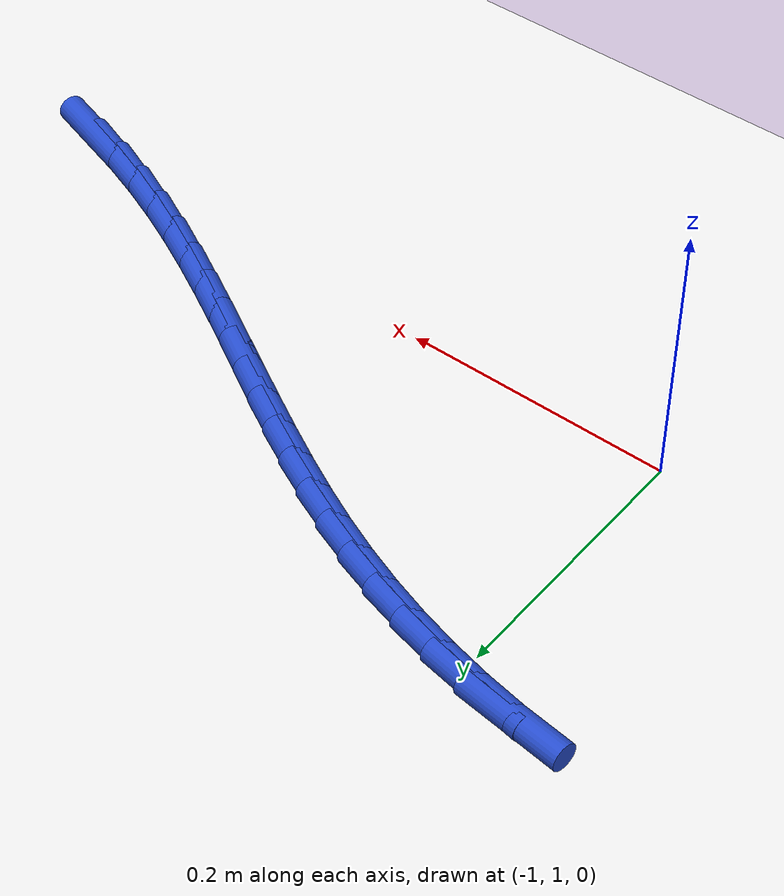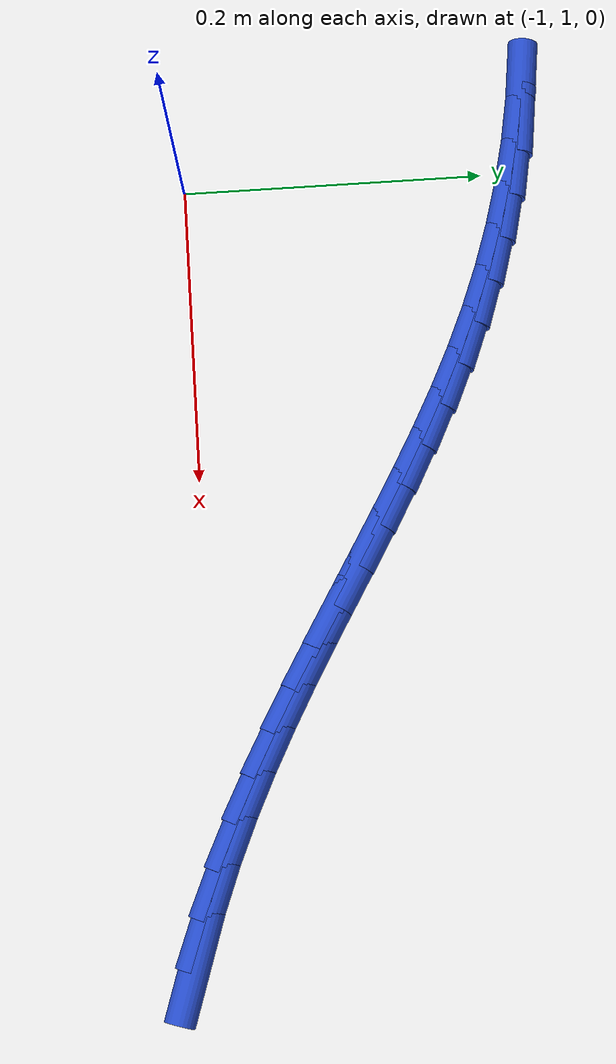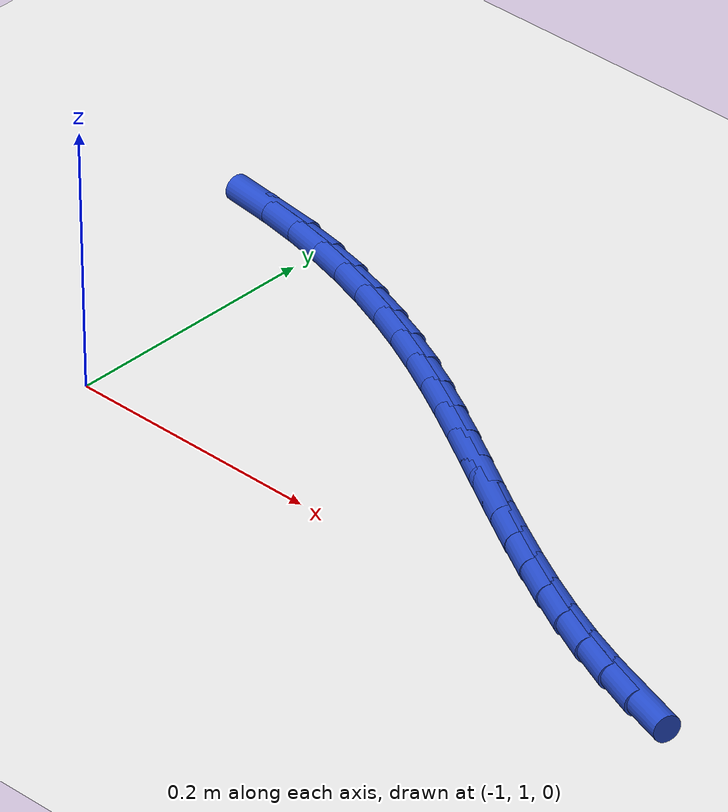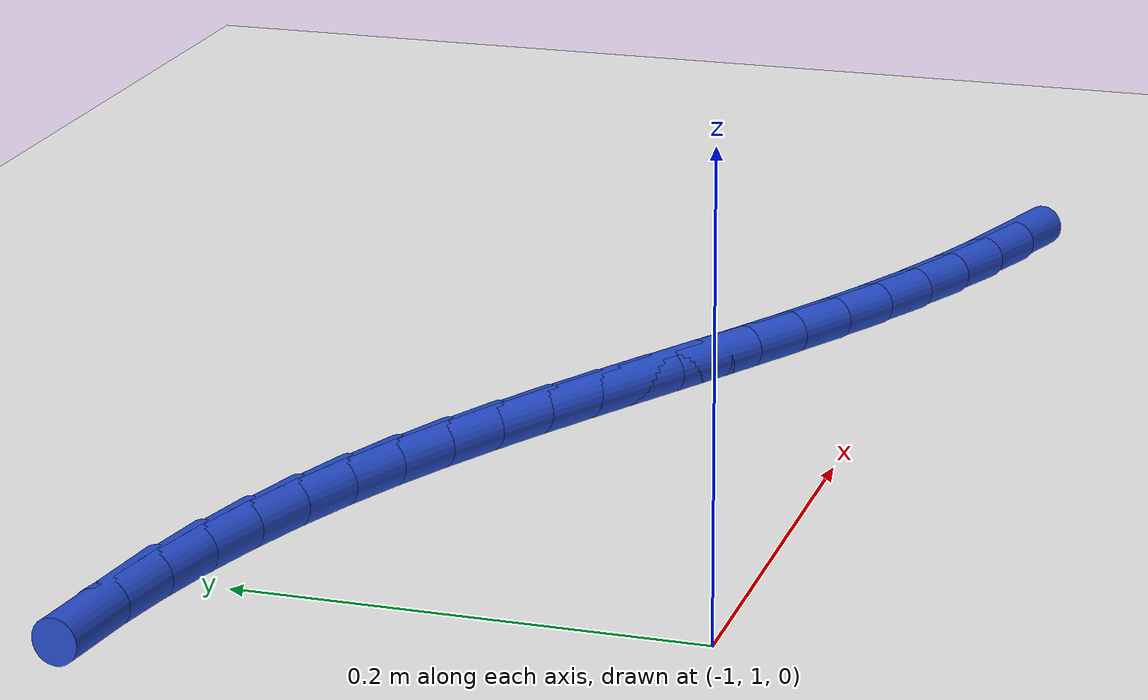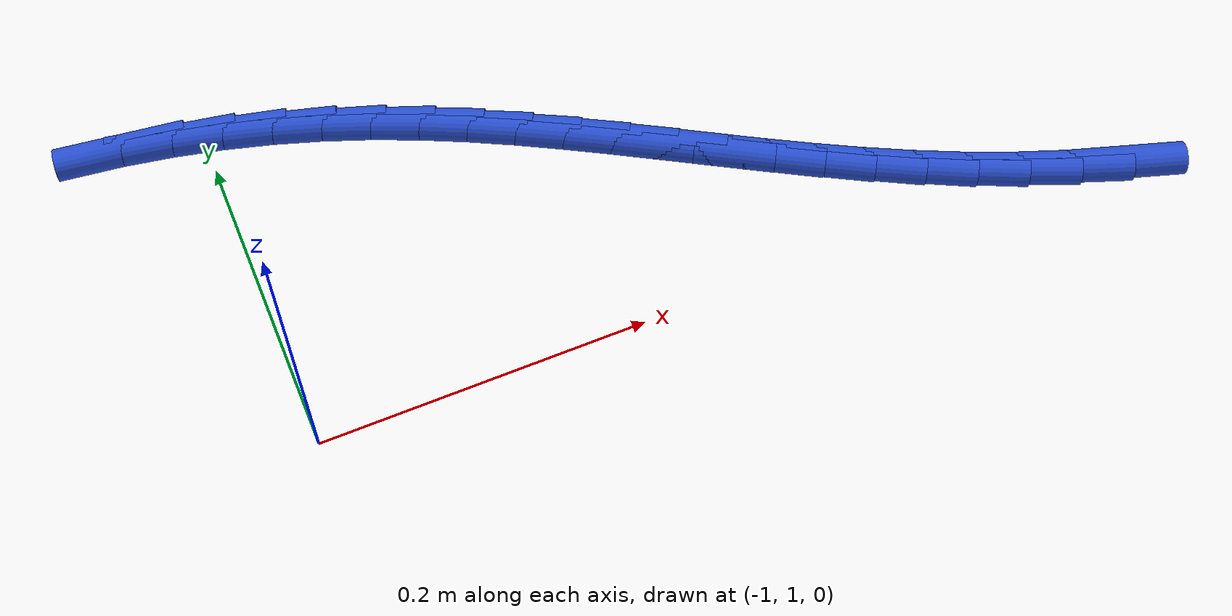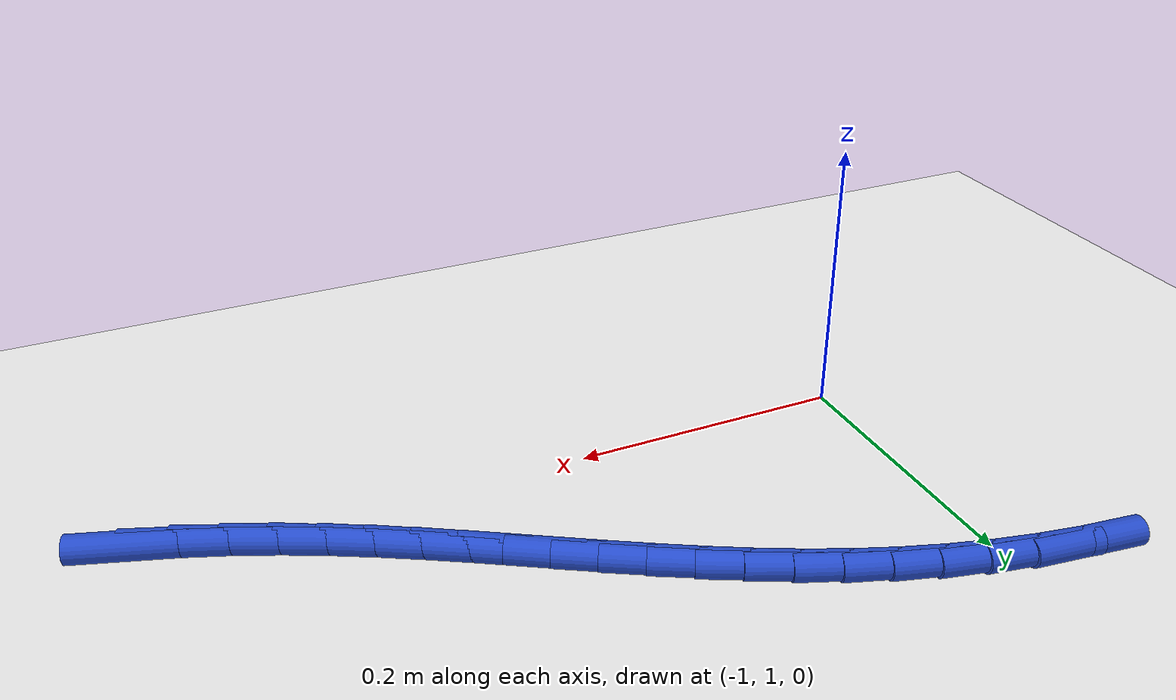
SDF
<sdf version="1.6">
 <world name="default">
  <model name="ground_plane">
   <static>1</static>
   <link name="link">
    <collision name="collision">
     <geometry><plane><normal>0 0 1</normal><size>100 100</size></plane></geometry>
     <surface><friction><ode><mu>100</mu><mu2>50</mu2></ode></friction></surface>
    </collision>
    <visual name="visual">
     <cast_shadows>0</cast_shadows>
     <geometry><plane><normal>0 0 1</normal><size>100 100</size></plane></geometry>
     <material>
      <script><uri>file://media/materials/scripts/gazebo.material</uri><name>Gazebo/WhiteGlow</name></script>
     </material>
    </visual>
   </link>
  </model>
  <model name="line">
   <link name="link_39">
    <pose>-0.49313335348905224 0.9839358640934801 0.01 0 1.57 -0.31216639597460644</pose>
    <collision name="collision">
     <geometry><cylinder><radius>0.01</radius><length>0.08</length></cylinder></geometry>
    </collision>
    <visual name="visual">
     <material>
      <script><name>Gazebo/Blue</name><uri>file://media/materials/scripts/gazebo.material</uri></script>
     </material>
     <geometry><cylinder><radius>0.01</radius><length>0.08</length></cylinder></geometry>
    </visual>
   </link>
   <link name="link_40">
    <pose>-0.5239972693988119 0.993896200890041 0.01 0 1.57 -0.36011412033585544</pose>
    <collision name="collision">
     <geometry><cylinder><radius>0.01</radius><length>0.08</length></cylinder></geometry>
    </collision>
    <visual name="visual">
     <material>
      <script><name>Gazebo/Blue</name><uri>file://media/materials/scripts/gazebo.material</uri></script>
     </material>
     <geometry><cylinder><radius>0.01</radius><length>0.08</length></cylinder></geometry>
    </visual>
   </link>
   <link name="link_41">
    <pose>-0.5538311761620451 1.0051296556623404 0.01 0 1.57 -0.40478937362412876</pose>
    <collision name="collision">
     <geometry><cylinder><radius>0.01</radius><length>0.08</length></cylinder></geometry>
    </collision>
    <visual name="visual">
     <material>
      <script><name>Gazebo/Blue</name><uri>file://media/materials/scripts/gazebo.material</uri></script>
     </material>
     <geometry><cylinder><radius>0.01</radius><length>0.08</length></cylinder></geometry>
    </visual>
   </link>
   <link name="link_42">
    <pose>-0.5827149878514207 1.0175049308676767 0.01 0 1.57 -0.44364257790395245</pose>
    <collision name="collision">
     <geometry><cylinder><radius>0.01</radius><length>0.08</length></cylinder></geometry>
    </collision>
    <visual name="visual">
     <material>
      <script><name>Gazebo/Blue</name><uri>file://media/materials/scripts/gazebo.material</uri></script>
     </material>
     <geometry><cylinder><radius>0.01</radius><length>0.08</length></cylinder></geometry>
    </visual>
   </link>
   <link name="link_43">
    <pose>-0.6107771095930478 1.0308411199827654 0.01 0 1.57 -0.4761888184410632</pose>
    <collision name="collision">
     <geometry><cylinder><radius>0.01</radius><length>0.08</length></cylinder></geometry>
    </collision>
    <visual name="visual">
     <material>
      <script><name>Gazebo/Blue</name><uri>file://media/materials/scripts/gazebo.material</uri></script>
     </material>
     <geometry><cylinder><radius>0.01</radius><length>0.08</length></cylinder></geometry>
    </visual>
   </link>
   <link name="link_44">
    <pose>-0.6381459465130345 1.0449573164843207 0.01 0 1.57 -0.5020729780191528</pose>
    <collision name="collision">
     <geometry><cylinder><radius>0.01</radius><length>0.08</length></cylinder></geometry>
    </collision>
    <visual name="visual">
     <material>
      <script><name>Gazebo/Blue</name><uri>file://media/materials/scripts/gazebo.material</uri></script>
     </material>
     <geometry><cylinder><radius>0.01</radius><length>0.08</length></cylinder></geometry>
    </visual>
   </link>
   <link name="link_45">
    <pose>-0.6649499037374897 1.0596726138490573 0.01 0 1.57 -0.5210412539069489</pose>
    <collision name="collision">
     <geometry><cylinder><radius>0.01</radius><length>0.08</length></cylinder></geometry>
    </collision>
    <visual name="visual">
     <material>
      <script><name>Gazebo/Blue</name><uri>file://media/materials/scripts/gazebo.material</uri></script>
     </material>
     <geometry><cylinder><radius>0.01</radius><length>0.08</length></cylinder></geometry>
    </visual>
   </link>
   <link name="link_46">
    <pose>-0.6913173863925227 1.0748061055536908 0.01 0 1.57 -0.5329124336635036</pose>
    <collision name="collision">
     <geometry><cylinder><radius>0.01</radius><length>0.08</length></cylinder></geometry>
    </collision>
    <visual name="visual">
     <material>
      <script><name>Gazebo/Blue</name><uri>file://media/materials/scripts/gazebo.material</uri></script>
     </material>
     <geometry><cylinder><radius>0.01</radius><length>0.08</length></cylinder></geometry>
    </visual>
   </link>
   <link name="link_47">
    <pose>-0.7173767996042418 1.090176885074935 0.01 0 1.57 -0.5375538321107184</pose>
    <collision name="collision">
     <geometry><cylinder><radius>0.01</radius><length>0.08</length></cylinder></geometry>
    </collision>
    <visual name="visual">
     <material>
      <script><name>Gazebo/Blue</name><uri>file://media/materials/scripts/gazebo.material</uri></script>
     </material>
     <geometry><cylinder><radius>0.01</radius><length>0.08</length></cylinder></geometry>
    </visual>
   </link>
   <link name="link_48">
    <pose>-0.7432565484987558 1.105604045889505 0.01 0 1.57 -0.5348652059807022</pose>
    <collision name="collision">
     <geometry><cylinder><radius>0.01</radius><length>0.08</length></cylinder></geometry>
    </collision>
    <visual name="visual">
     <material>
      <script><name>Gazebo/Blue</name><uri>file://media/materials/scripts/gazebo.material</uri></script>
     </material>
     <geometry><cylinder><radius>0.01</radius><length>0.08</length></cylinder></geometry>
    </visual>
   </link>
   <link name="link_49">
    <pose>-0.7690850382021732 1.1209066814741158 0.01 0 1.57 -0.5247727653026203</pose>
    <collision name="collision">
     <geometry><cylinder><radius>0.01</radius><length>0.08</length></cylinder></geometry>
    </collision>
    <visual name="visual">
     <material>
      <script><name>Gazebo/Blue</name><uri>file://media/materials/scripts/gazebo.material</uri></script>
     </material>
     <geometry><cylinder><radius>0.01</radius><length>0.08</length></cylinder></geometry>
    </visual>
   </link>
   <link name="link_50">
    <pose>-0.7949906738406032 1.1359038853054824 0.01 0 1.57 -0.5072345987312812</pose>
    <collision name="collision">
     <geometry><cylinder><radius>0.01</radius><length>0.08</length></cylinder></geometry>
    </collision>
    <visual name="visual">
     <material>
      <script><name>Gazebo/Blue</name><uri>file://media/materials/scripts/gazebo.material</uri></script>
     </material>
     <geometry><cylinder><radius>0.01</radius><length>0.08</length></cylinder></geometry>
    </visual>
   </link>
   <link name="link_51">
    <pose>-0.8211018605401543 1.1504147508603186 0.01 0 1.57 -0.48225816670807825</pose>
    <collision name="collision">
     <geometry><cylinder><radius>0.01</radius><length>0.08</length></cylinder></geometry>
    </collision>
    <visual name="visual">
     <material>
      <script><name>Gazebo/Blue</name><uri>file://media/materials/scripts/gazebo.material</uri></script>
     </material>
     <geometry><cylinder><radius>0.01</radius><length>0.08</length></cylinder></geometry>
    </visual>
   </link>
   <link name="link_52">
    <pose>-0.8475470034269355 1.1642583716153405 0.01 0 1.57 -0.4499295834617749</pose>
    <collision name="collision">
     <geometry><cylinder><radius>0.01</radius><length>0.08</length></cylinder></geometry>
    </collision>
    <visual name="visual">
     <material>
      <script><name>Gazebo/Blue</name><uri>file://media/materials/scripts/gazebo.material</uri></script>
     </material>
     <geometry><cylinder><radius>0.01</radius><length>0.08</length></cylinder></geometry>
    </visual>
   </link>
   <link name="link_53">
    <pose>-0.8744545076270547 1.1772538410472617 0.01 0 1.57 -0.41049919189423534</pose>
    <collision name="collision">
     <geometry><cylinder><radius>0.01</radius><length>0.08</length></cylinder></geometry>
    </collision>
    <visual name="visual">
     <material>
      <script><name>Gazebo/Blue</name><uri>file://media/materials/scripts/gazebo.material</uri></script>
     </material>
     <geometry><cylinder><radius>0.01</radius><length>0.08</length></cylinder></geometry>
    </visual>
   </link>
   <link name="link_54">
    <pose>-0.9019514815904139 1.189221206723689 0.01 0 1.57 -0.3663580108797198</pose>
    <collision name="collision">
     <geometry><cylinder><radius>0.01</radius><length>0.08</length></cylinder></geometry>
    </collision>
    <visual name="visual">
     <material>
      <script><name>Gazebo/Blue</name><uri>file://media/materials/scripts/gazebo.material</uri></script>
     </material>
     <geometry><cylinder><radius>0.01</radius><length>0.08</length></cylinder></geometry>
    </visual>
   </link>
   <link name="link_55">
    <pose>-0.930106396688106 1.2000236612182433 0.01 0 1.57 -0.3205173660841436</pose>
    <collision name="collision">
     <geometry><cylinder><radius>0.01</radius><length>0.08</length></cylinder></geometry>
    </collision>
    <visual name="visual">
     <material>
      <script><name>Gazebo/Blue</name><uri>file://media/materials/scripts/gazebo.material</uri></script>
     </material>
     <geometry><cylinder><radius>0.01</radius><length>0.08</length></cylinder></geometry>
    </visual>
   </link>
   <link name="link_56">
    <pose>-0.9589064176205065 1.2095842223357571 0.01 0 1.57 -0.2732205005396671</pose>
    <collision name="collision">
     <geometry><cylinder><radius>0.01</radius><length>0.08</length></cylinder></geometry>
    </collision>
    <visual name="visual">
     <material>
      <script><name>Gazebo/Blue</name><uri>file://media/materials/scripts/gazebo.material</uri></script>
     </material>
     <geometry><cylinder><radius>0.01</radius><length>0.08</length></cylinder></geometry>
    </visual>
   </link>
   <link name="link_57">
    <pose>-0.9883327261002346 1.2178303101474781 0.01 0 1.57 -0.22452671844911645</pose>
    <collision name="collision">
     <geometry><cylinder><radius>0.01</radius><length>0.08</length></cylinder></geometry>
    </collision>
    <visual name="visual">
     <material>
      <script><name>Gazebo/Blue</name><uri>file://media/materials/scripts/gazebo.material</uri></script>
     </material>
     <geometry><cylinder><radius>0.01</radius><length>0.08</length></cylinder></geometry>
    </visual>
   </link>
   <link name="link_58">
    <pose>-1.0183665038399086 1.2246893447246536 0.01 0 1.57 -0.17450199606545194</pose>
    <collision name="collision">
     <geometry><cylinder><radius>0.01</radius><length>0.08</length></cylinder></geometry>
    </collision>
    <visual name="visual">
     <material>
      <script><name>Gazebo/Blue</name><uri>file://media/materials/scripts/gazebo.material</uri></script>
     </material>
     <geometry><cylinder><radius>0.01</radius><length>0.08</length></cylinder></geometry>
    </visual>
   </link>
   <link name="link_59">
    <pose>-1.048984261307572 1.2300871050368216 0.01 0 1.57 -0.12236379137889589</pose>
    <collision name="collision">
     <geometry><cylinder><radius>0.01</radius><length>0.08</length></cylinder></geometry>
    </collision>
    <visual name="visual">
     <material>
      <script><name>Gazebo/Blue</name><uri>file://media/materials/scripts/gazebo.material</uri></script>
     </material>
     <geometry><cylinder><radius>0.01</radius><length>0.08</length></cylinder></geometry>
    </visual>
   </link>
  </model>
 </world>
</sdf>
